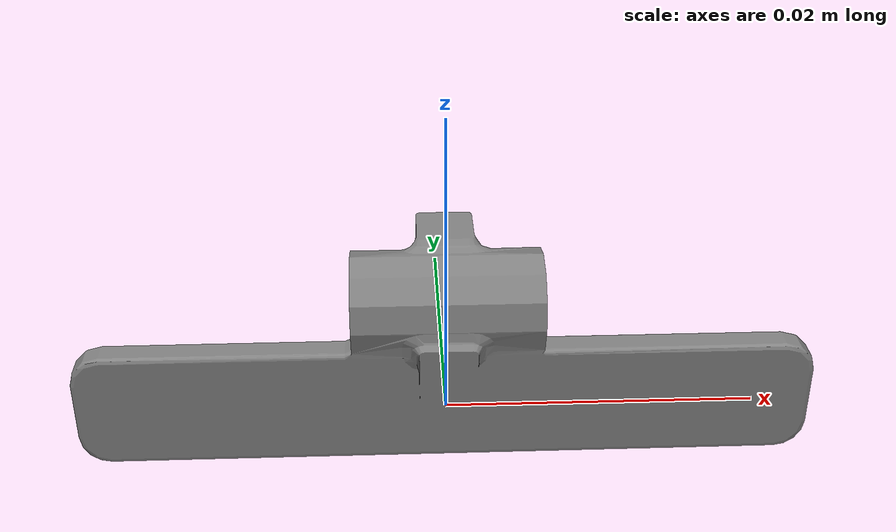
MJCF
<mujoco model="csm_latch_lock">
  <default>
    <default class="visual">
      <geom group="2" type="mesh" contype="0" conaffinity="0"/>
    </default>
    <default class="collision">
      <geom group="3" type="mesh"/>
    </default>
  </default>
  <asset>
    <material name="mtl_csm_latch_lock" specular="0.20000000000000004" shininess="1.0" rgba="0.50196078 0.50196078 0.50196078 1.0"/>
    <mesh file="csm_latch_lock.obj"/>
  </asset>
  <worldbody>
    <body name="csm_latch_lock">
      <geom material="mtl_csm_latch_lock" mesh="csm_latch_lock" class="visual"/>
      <geom mesh="csm_latch_lock" class="collision"/>
    </body>
  </worldbody>
</mujoco>
